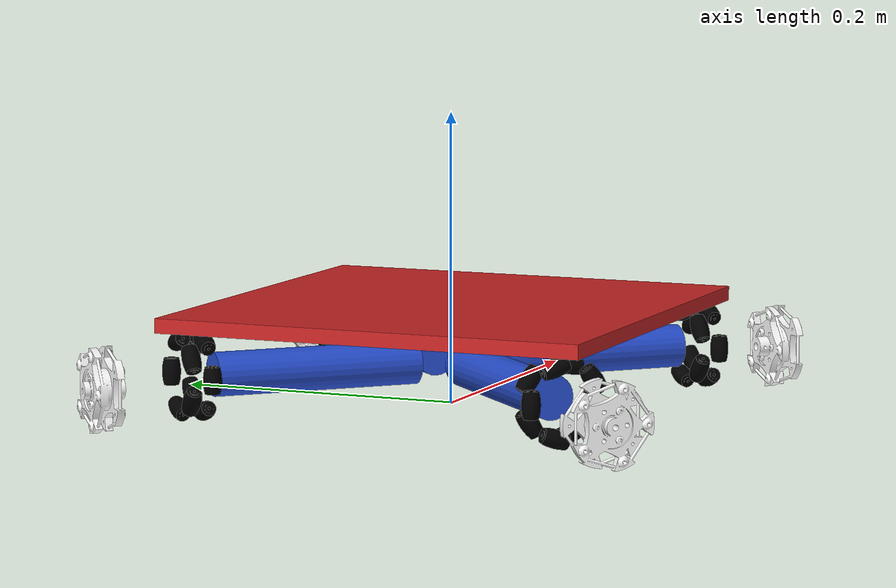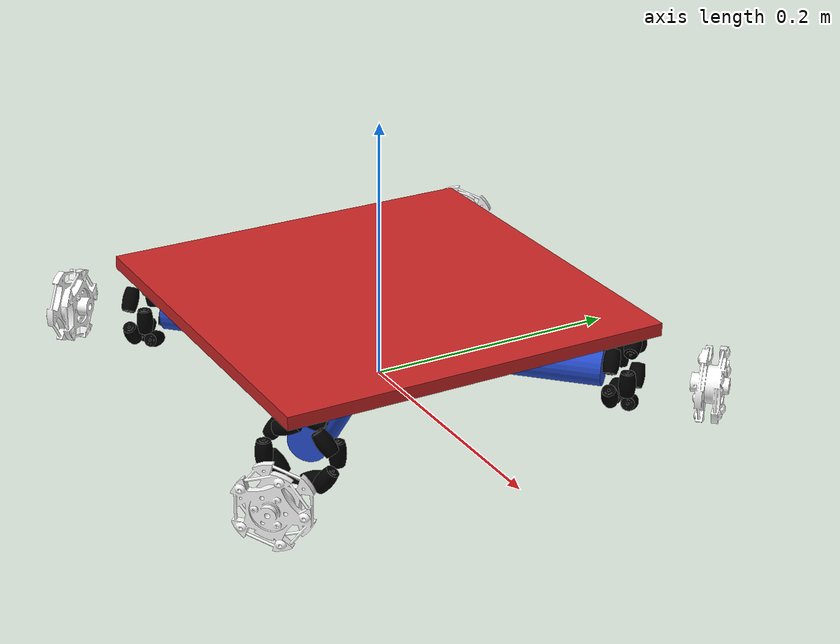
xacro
<?xml version="1.0"?>
<robot
	xmlns:xacro="http://www.ros.org/wiki/xacro"
	name="open_base">

	<xacro:include filename="$(find description)/macros/rim.xacro"/>

	<link name="origin_link"/>
	<link name="base_link">

		<inertial>

			<mass value="0.07862944645"/>
			<inertia
				ixx="0.00002035985530754"
				ixy="0"
				ixz="0"
				iyy="0.00002035985530754"
				iyz="0"
				izz="0.00003945961663220"/>

		</inertial>

	  <visual>
	    <geometry>
	      <box size="0.3 0.3 0.01"/>
	    </geometry>
	    <origin rpy="0 0 0" xyz="0 0 0"/>
	    <material name="red"/>
	  </visual>

		<collision>

		<geometry>

      <box size="0.3 0.3 0.01"/>

		</geometry>

	</collision>
		</link>
  <joint name="origin_joint" type="fixed">
      <parent link="origin_link"/>
      <child link="base_link"/>
      <origin xyz="0 0 0.065"/>
  </joint>

	<!--front left wheel and motor-->

  <link name="front_left_motor">
      <visual>
        <geometry>
          <cylinder length="0.145" radius="0.015"/>
        </geometry>
        <origin rpy="0 0 0" xyz="0 0 0"/>
        <material name="blue"/>
      </visual>
  </link>

  <joint name="base_to_front_left_motor" type="fixed">
      <parent link="base_link"/>
      <child link="front_left_motor"/>
      <origin rpy="0 1.570796 0.785398" xyz="0.07 0.07 -0.035" />
  </joint>

	<xacro:rim_macro
			name="front_left"
			color="1 1 1"
			xyz="0 0 0.0875"
			rpy="0 0 0"
			parent_link="front_left_motor"
	/>

<!--front right wheel and motor-->
	<link name="front_right_motor">
		    <visual>
		      <geometry>
		        <cylinder length="0.145" radius="0.015"/>
		      </geometry>
		      <origin rpy="0 0 0" xyz="0 0 0"/>
		      <material name="blue"/>
		    </visual>
		</link>

	<joint name="base_to_front_right_motor" type="fixed">
		    <parent link="base_link"/>
		    <child link="front_right_motor"/>
		    <origin rpy="0 1.570796 -0.785398" xyz="0.07 -0.07 -0.035" />
		</joint>

	<xacro:rim_macro
			name="front_right"
			color="1 1 1"
			xyz="0 0 0.0875"
			rpy="0 0 0"
			parent_link="front_right_motor"
	 />
<!--back left wheel and motor-->

<link name="back_right_motor">
    <visual>
      <geometry>
        <cylinder length="0.145" radius="0.015"/>
      </geometry>
      <origin rpy="0 0 0" xyz="0 0 0"/>
      <material name="blue"/>
    </visual>
</link>

<joint name="base_to_back_right_motor" type="fixed">
    <parent link="base_link"/>
    <child link="back_right_motor"/>
    <origin rpy="0 1.570796 3.92699" xyz="-0.07 -0.07 -0.035" />
</joint>

<xacro:rim_macro
		name="back_right"
		color="1 1 1"
		xyz="0 0 0.0875"
		rpy="0 0 0"
		parent_link="back_right_motor"
 />

<!--back left wheel and motor-->

<link name="back_left_motor">
    <visual>
      <geometry>
        <cylinder length="0.145" radius="0.015"/>
      </geometry>
      <origin rpy="0 0 0" xyz="0 0 0"/>
      <material name="blue"/>
    </visual>
</link>

<joint name="base_to_back_left_motor" type="fixed">
    <parent link="base_link"/>
    <child link="back_left_motor"/>
    <origin rpy="0 1.570796 2.35619" xyz="-0.07 0.07 -0.035" />
</joint>

<xacro:rim_macro
		name="back_left"
		color="1 1 1"
		xyz="0 0 0.0875"
		rpy="0 0 0"
		parent_link="back_left_motor"
 />

</robot>

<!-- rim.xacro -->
<robot xmlns:xacro="http://www.ros.org/wiki/xacro">

	<xacro:include filename="$(find description)/macros/roller.xacro"/>

	<xacro:macro
		name="rim_macro"
		params="name color xyz rpy parent_link">

		<link name="rim_${name}_link">

			<inertial>

				<origin xyz="0 0 -0.000343"/>
				<mass value="0.00835758"/>
				<inertia
					ixx="6.63684e-07"
					ixy="0"
					ixz="0"
					iyy="6.63684e-07"
					iyz="0"
					izz="9.40333e-07"
				/>

			</inertial>
			<visual>
				<geometry>

					<mesh filename="package://description/mesh/wheelasm.stl" scale="0.001 0.001 0.001"/>

				</geometry>
				<material name="rim_${name}_material">

					<color rgba="${color} 1"/>

				</material>

			</visual>
			<collision>

				<geometry>

					<mesh filename="package://description/mesh/wheelasm.stl" scale="0.001 0.001 0.001"/>

				</geometry>

			</collision>

		</link>
		<joint
			name="rim_${name}_joint"
			type="continuous">

			<parent link="${parent_link}" />
			<child link="rim_${name}_link" />
			<axis xyz="0 0 1"/>
			<origin
				xyz="${xyz}"
				rpy="${rpy}"/>
		</joint>

	<xacro:roller_macro
		parent="${name}"
		name="front_left"
		xyz="0 -0.024 0.0065"
		rpy="0 -${pi/2} 0"/>

	<xacro:roller_macro
		parent="${name}"
		name="back_right"
		xyz="0 0.024 -0.0065"
		rpy="${pi} -${pi/2} 0"/>

	<xacro:roller_macro
		parent="${name}"
		name="front_top_right"
		xyz="-0.0141068 0.0194164 0.0065"
		rpy="${pi} -${pi/2} ${pi/5}"/>

	<xacro:roller_macro
		parent="${name}"
		name="front_down_right"
		xyz="0.0141068 0.0194164 0.0065"
		rpy="${pi} -${pi/2} -${pi/5}"/>

	<xacro:roller_macro
		parent="${name}"
		name="back_top_left"
		xyz="-0.0141068 -0.0194164 -0.0065"
		rpy="0 -${pi/2} -${pi/5}"/>

	<xacro:roller_macro
		parent="${name}"
		name="back_down_left"
		xyz="0.0141068 -0.0194164 -0.0065"
		rpy="0 -${pi/2} ${pi/5}"/>

	<xacro:roller_macro
		parent="${name}"
		name="front_top_left"
		xyz="-0.0228254 -0.0074164 0.0065"
		rpy="${pi} -${pi/2} ${3*pi/5}"/>

	<xacro:roller_macro
		parent="${name}"
		name="front_down_left"
		xyz="0.0228254 -0.0074164 0.0065"
		rpy="${pi} -${pi/2} -${3*pi/5}"/>

	<xacro:roller_macro
		parent="${name}"
		name="back_down_right"
		xyz="0.0228254 0.0074164 -0.0065"
		rpy="0 -${pi/2} ${3*pi/5}"/>

	<xacro:roller_macro
		parent="${name}"
		name="back_top_right"
		xyz="-0.0228254 0.0074164 -0.0065"
		rpy="0 -${pi/2} -${3*pi/5}"/>

</xacro:macro>

</robot>

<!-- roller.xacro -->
<robot xmlns:xacro="http://www.ros.org/wiki/xacro">

	<xacro:macro
		name="roller_macro"
		params="parent name xyz rpy">

    <link name="roller_${name}_rim_${parent}_link">

			<inertial>

				<mass value="0.00113845"/>
				<inertia
					ixx="2.53776e-08"
					ixy="0"
					ixz="0"
					iyy="2.53776e-08"
					iyz="0"
					izz="1.47666e-08"
				/>

			</inertial>
			<visual>
				<origin rpy="0 -${pi/2} 0" xyz="0 0 0"/>
				<geometry>

					<mesh filename="package://description/mesh/rubberwheel.stl" scale="0.001 0.001 0.001"/>

				</geometry>
				<material name="roller_material">

					<color rgba="0 0 0 1"/>

				</material>

			</visual>
			<collision>

				<geometry>

					<mesh filename="package://description/mesh/rubberwheel.stl" scale="0.001 0.001 0.001"/>

				</geometry>

			</collision>

		</link>
		<joint
			name="roller_${name}_rim_${parent}_joint"
			type="continuous"
		>

			<parent link="rim_${parent}_link"/>
			<child link="roller_${name}_rim_${parent}_link"/>
			<axis xyz="0 0 1"/>
			<origin
				xyz="${xyz}"
				rpy="${rpy}"
			/>

		</joint>

	</xacro:macro>

</robot>
